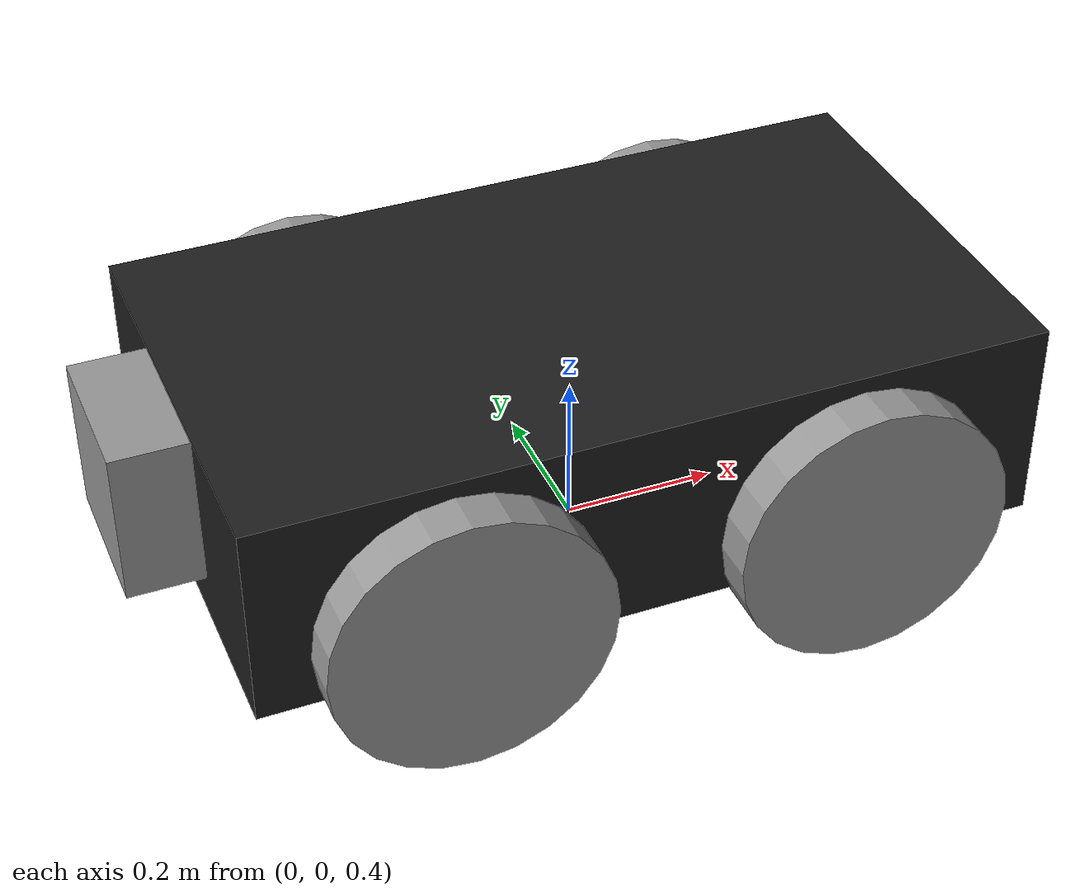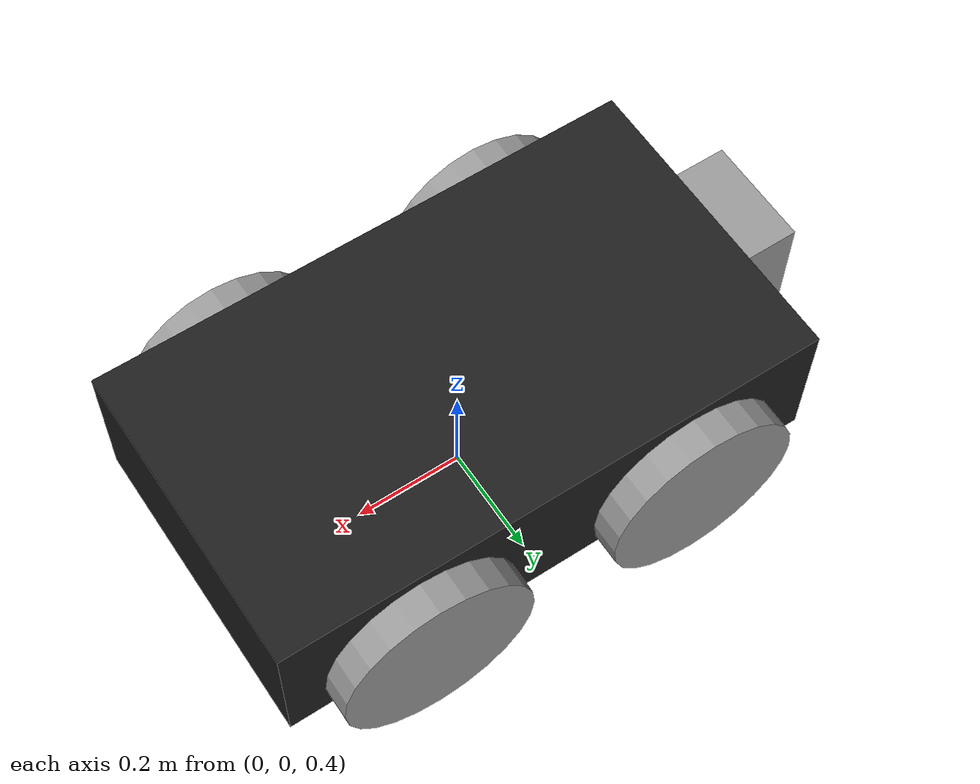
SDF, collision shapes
<?xml version="1.0" ?>
<sdf version="1.5">
  <model name="husky">

    <pose>0 0 .5 0 0 0</pose>
    <!-- Main Chassis -->
    <link name="base_link">
      <!-- Physics -->
      <collision name="collision">
        <pose>0 0 0.1 0 0 0</pose>
        <geometry>
          <box>
            <size>1.0074 0.5709 0.2675</size>
          </box>
        </geometry>
      </collision>
      <inertial>
        <mass>33.855</mass>
        <pose>-0.0856132 -0.000839955 0.238145 0 0 0</pose>
        <inertia>
          <ixx>2.2343</ixx>
          <ixy>-0.023642</ixy>
          <ixz>0.275174</ixz>
          <iyy>3.42518</iyy>
          <iyz>0.00239624</iyz>
          <izz>2.1241</izz>
        </inertia>
      </inertial>
      <!-- Visual -->
      <!-- Base frame -->
      <visual name="base">
        <pose>0 0 0 0 0 0</pose>
        <geometry>
          <mesh>
            <uri>model://husky/meshes/base_link.stl</uri>
          </mesh>
        </geometry>
        <material>
          <script>
            <name>Gazebo/FlatBlack</name>
          </script>
        </material>
      </visual>
      <!-- Top Plate -->
      <visual name="top_plate">
        <pose>0 0 0 0 0 0</pose>
        <geometry>
          <mesh>
            <uri>model://husky/meshes/top_plate.stl</uri>
          </mesh>
        </geometry>
        <material>
          <script>
            <name>Gazebo/Yellow</name>
          </script>
        </material>
      </visual>
      <!-- Front Bumper -->
      <visual name="front_bumper">
        <pose>0.47 0 0.091 0 0 0</pose>
        <geometry>
          <mesh>
            <uri>model://husky/meshes/bumper.stl</uri>
          </mesh>
        </geometry>
        <material>
          <script>
            <name>Gazebo/FlatBlack</name>
          </script>
        </material>
      </visual>
      <!-- Rear Bumper -->
      <visual name="rear_bumper">
        <pose>-0.47 0 0.091 0 0 3.141</pose>
        <geometry>
          <mesh>
            <uri>model://husky/meshes/bumper.stl</uri>
          </mesh>
        </geometry>
        <material>
          <script>
            <name>Gazebo/FlatBlack</name>
          </script>
        </material>
      </visual>
      <!-- User Rail -->
      <visual name="user_rail">
        <pose>0.272 0 0.245 0 0 0</pose>
        <geometry>
          <mesh>
            <uri>model://husky/meshes/user_rail.stl</uri>
          </mesh>
        </geometry>
        <material>
          <script>
            <name>Gazebo/Grey</name>
          </script>
        </material>
      </visual>
    </link>
    <!-- Back Left Wheel -->
    <link name="back_left_wheel">
      <pose>-0.256 0.285475 0.035 0 0 0</pose>
      <inertial>
        <mass>2.6357</mass>
        <pose>0 0 0 0 0 0</pose>
        <inertia>
          <ixx>0.0246688</ixx>
          <ixy>0</ixy>
          <ixz>0</ixz>
          <iyy>0.0246688</iyy>
          <iyz>0</iyz>
          <izz>0.0441058</izz>
        </inertia>
      </inertial>
      <collision name="back_left_wheel_collision">
        <pose>0 0 0 -1.5707 0 0</pose>
        <geometry>
          <cylinder>
            <radius>0.17775</radius>
            <length>0.1143</length>
          </cylinder>
        </geometry>
        <surface>
          <friction>
            <ode>
              <mu>100000.0</mu>
              <mu2>100000.0</mu2>
              <slip1>0.0</slip1>
              <slip2>0.0</slip2>
            </ode>
          </friction>
        </surface>
      </collision>
      <visual name="back_left_wheel">
        <pose>0 0 0 -3.14159 0 0</pose>
        <geometry>
          <mesh>
            <uri>model://husky/meshes/wheel.stl</uri>
          </mesh>
        </geometry>
        <material>
          <script>
            <name>Gazebo/Grey</name>
          </script>
        </material>
      </visual>
    </link>
    <joint name="back_left_joint" type="revolute">
      <parent>base_link</parent>
      <child>back_left_wheel</child>
      <axis>
        <xyz>0 1 0</xyz>
        <use_parent_model_frame>true</use_parent_model_frame>
      </axis>
      <physics>
        <ode>
          <limit>
            <cfm>0.000000</cfm>
            <erp>0.900000</erp>
          </limit>
        </ode>
      </physics>
    </joint>
    <!-- Back Right Wheel -->
    <link name="back_right_wheel">
      <pose>-0.256 -0.285475 0.035 0 0 0</pose>
      <inertial>
        <mass>2.6357</mass>
        <pose>0 0 0 0 0 0</pose>
        <inertia>
          <ixx>0.0246688</ixx>
          <ixy>0</ixy>
          <ixz>0</ixz>
          <iyy>0.0246688</iyy>
          <iyz>0</iyz>
          <izz>0.0441058</izz>
        </inertia>
      </inertial>
      <collision name="back_right_wheel_collision">
        <pose>0 0 0 -1.5707 0 0</pose>
        <geometry>
          <cylinder>
            <radius>0.17775</radius>
            <length>0.1143</length>
          </cylinder>
        </geometry>
        <surface>
          <friction>
            <ode>
              <mu>100000.0</mu>
              <mu2>100000.0</mu2>
              <slip1>0.0</slip1>
              <slip2>0.0</slip2>
            </ode>
          </friction>
        </surface>
      </collision>
      <visual name="back_right_wheel">
        <pose>0 0 0 -3.14159 0 0</pose>
        <geometry>
          <mesh>
            <uri>model://husky/meshes/wheel.stl</uri>
          </mesh>
        </geometry>
        <material>
          <script>
            <name>Gazebo/Grey</name>
          </script>
        </material>
      </visual>
    </link>
    <joint name="back_right_joint" type="revolute">
      <parent>base_link</parent>
      <child>back_right_wheel</child>
      <axis>
        <xyz>0 1 0</xyz>
        <use_parent_model_frame>true</use_parent_model_frame>
      </axis>
      <physics>
        <ode>
          <limit>
            <cfm>0.000000</cfm>
            <erp>0.900000</erp>
          </limit>
        </ode>
      </physics>
    </joint>
    <!-- Front Left Wheel -->
    <link name="front_left_wheel">
      <pose>0.256 0.285475 0.035 0 0 0</pose>
      <inertial>
        <mass>2.6357</mass>
        <pose>0 0 0 0 0 0</pose>
        <inertia>
          <ixx>0.0246688</ixx>
          <ixy>0</ixy>
          <ixz>0</ixz>
          <iyy>0.0246688</iyy>
          <iyz>0</iyz>
          <izz>0.0441058</izz>
        </inertia>
      </inertial>
      <collision name="front_left_wheel_collision">
        <pose>0 0 0 -1.5707 0 0</pose>
        <geometry>
          <cylinder>
            <radius>0.17775</radius>
            <length>0.1143</length>
          </cylinder>
        </geometry>
        <surface>
          <friction>
            <ode>
              <mu>100000.0</mu>
              <mu2>100000.0</mu2>
              <slip1>0.0</slip1>
              <slip2>0.0</slip2>
            </ode>
          </friction>
        </surface>
      </collision>
      <visual name="front_left_wheel">
        <pose>0 0 0 -3.14159 0 0</pose>
        <geometry>
          <mesh>
            <uri>model://husky/meshes/wheel.stl</uri>
          </mesh>
        </geometry>
        <material>
          <script>
            <name>Gazebo/Grey</name>
          </script>
        </material>
      </visual>
    </link>
    <joint name="front_left_joint" type="revolute">
      <parent>base_link</parent>
      <child>front_left_wheel</child>
      <axis>
        <xyz>0 1 0</xyz>
        <use_parent_model_frame>true</use_parent_model_frame>
      </axis>
      <physics>
        <ode>
          <limit>
            <cfm>0.000000</cfm>
            <erp>0.900000</erp>
          </limit>
        </ode>
      </physics>
    </joint>
    <!-- Front Right Wheel -->
    <link name="front_right_wheel">
      <pose>0.256 -0.285475 0.035 0 0 0</pose>
      <inertial>
        <mass>2.6357</mass>
        <pose>0 0 0 0 0 0</pose>
        <inertia>
          <ixx>0.0246688</ixx>
          <ixy>0</ixy>
          <ixz>0</ixz>
          <iyy>0.0246688</iyy>
          <iyz>0</iyz>
          <izz>0.0441058</izz>
        </inertia>
      </inertial>
      <collision name="front_right_wheel_collision">
        <pose>0 0 0 -1.5707 0 0</pose>
        <geometry>
          <cylinder>
            <radius>0.17775</radius>
            <length>0.1143</length>
          </cylinder>
        </geometry>
        <surface>
          <friction>
            <ode>
              <mu>100000.0</mu>
              <mu2>100000.0</mu2>
              <slip1>0.0</slip1>
              <slip2>0.0</slip2>
            </ode>
          </friction>
        </surface>
      </collision>
      <visual name="front_right_wheel">
        <pose>0 0 0 -3.14159 0 0</pose>
        <geometry>
          <mesh>
            <uri>model://husky/meshes/wheel.stl</uri>
          </mesh>
        </geometry>
        <material>
          <script>
            <name>Gazebo/Grey</name>
          </script>
        </material>
      </visual>
    </link>

    <link name="soporte_3">
            <pose>-0.5 0 0.13 0 0 0</pose>
            <inertial>
              <mass>300.0</mass>
              <inertia>
                <ixx>1</ixx>
                <ixy>0</ixy>
                <ixz>0</ixz>
                <iyy>10000</iyy>
                <iyz>0</iyz>
                <izz>1</izz>
              </inertia>
            </inertial>
                <collision name='collision'>
                  <geometry>
                    <box>
                      <size>0.2 0.2 0.2</size>
                    </box>
                  </geometry>
                </collision>

                <visual name='visual'>
                  <geometry>
                    <box>
                      <size>0.2 0.2 0.2</size>
                    </box>
                  </geometry>
                <material>
                  <script>
                    <uri>file://media/materials/scripts/gazebo.material</uri>
                    <name>Gazebo/Grey</name>
                  </script>
                </material>
                </visual>
     </link>

     <joint type="fixed" name="art_fija_13">
       <pose>0 0 0 0 0 0</pose>
       <child>soporte_3</child>
       <parent>base_link</parent>
     </joint>

    <joint name="front_right_joint" type="revolute">
      <parent>base_link</parent>
      <child>front_right_wheel</child>
      <axis>
        <xyz>0 1 0</xyz>
        <use_parent_model_frame>true</use_parent_model_frame>
      </axis>
      <physics>
        <ode>
          <limit>
            <cfm>0.000000</cfm>
            <erp>0.900000</erp>
          </limit>
        </ode>
      </physics>
    </joint>

    <plugin name="differential_drive_controller" filename="libgazebo_ros_diff_drive.so">
      <alwaysOn>true</alwaysOn>
      <updateRate>20</updateRate>
      <leftJoint>back_left_joint</leftJoint>
      <rightJoint>back_right_joint</rightJoint>
      <wheelSeparation>0.5709</wheelSeparation>
      <wheelDiameter>0.3555</wheelDiameter>
      <torque>35</torque>
      <commandTopic>cmd_vel</commandTopic>
      <odometryTopic>odom</odometryTopic>
      <odometryFrame>odom</odometryFrame>
      <robotBaseFrame>base_footprint</robotBaseFrame>
    </plugin>

    <plugin name="gazebo_ros_control" filename="libgazebo_ros_control.so">
      <robotNamespace>$(arg robot_namespace)</robotNamespace>
      <robotSimType>gazebo_ros_control/DefaultRobotHWSim</robotSimType>
      <legacyModeNS>true</legacyModeNS>
    </plugin>

    <plugin name="imu_controller" filename="libhector_gazebo_ros_imu.so">
      <robotNamespace>$(arg robot_namespace)</robotNamespace>
      <updateRate>50.0</updateRate>
      <bodyName>base_link</bodyName>
      <topicName>imu/data</topicName>
      <accelDrift>0.005 0.005 0.005</accelDrift>
      <accelGaussianNoise>0.005 0.005 0.005</accelGaussianNoise>
      <rateDrift>0.005 0.005 0.005 </rateDrift>
      <rateGaussianNoise>0.005 0.005 0.005 </rateGaussianNoise>
      <headingDrift>0.005</headingDrift>
      <headingGaussianNoise>0.005</headingGaussianNoise>
    </plugin>

    <plugin name="gps_controller" filename="libhector_gazebo_ros_gps.so">
      <robotNamespace>$(arg robot_namespace)</robotNamespace>
      <updateRate>40</updateRate>
      <bodyName>base_link</bodyName>
      <frameId>base_link</frameId>
      <topicName>navsat/fix</topicName>
      <velocityTopicName>navsat/vel</velocityTopicName>
      <referenceLatitude>49.9</referenceLatitude>
      <referenceLongitude>8.9</referenceLongitude>
      <referenceHeading>0</referenceHeading>
      <referenceAltitude>0</referenceAltitude>
      <drift>0.0001 0.0001 0.0001</drift>
    </plugin>

  </model>
</sdf>
